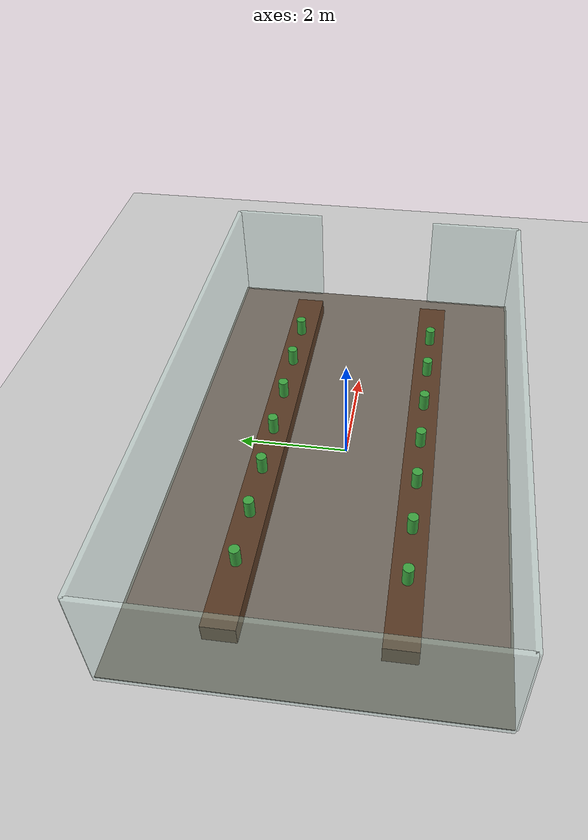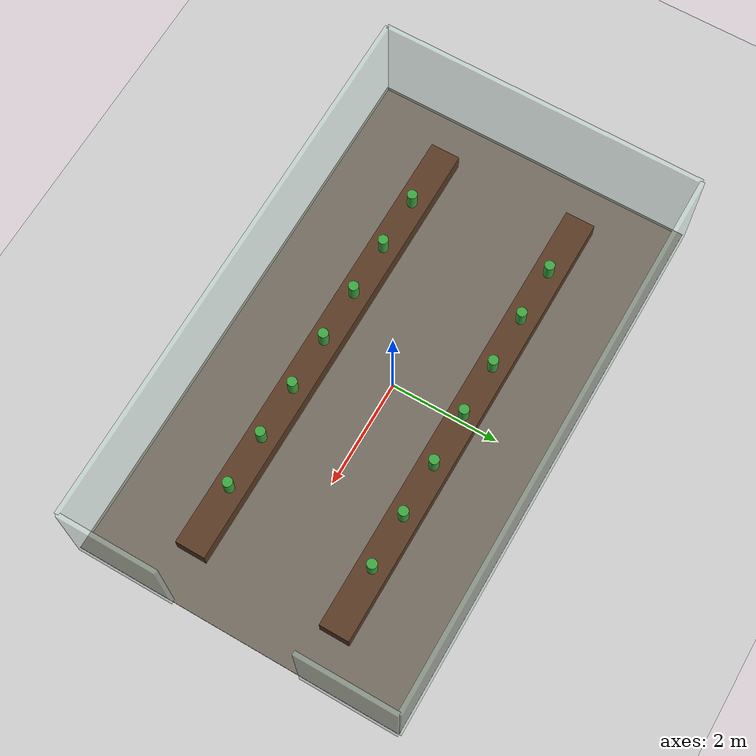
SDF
<sdf version="1.6">
  <world name="greenhouse_world">
    <scene>
      <ambient>0.45 0.45 0.45 1</ambient>
      <background>0.80 0.87 0.92 1</background>
      <shadows>true</shadows>
    </scene>

    <include>
      <uri>model://sun</uri>
    </include>

    <include>
      <uri>model://ground_plane</uri>
    </include>

    <physics type="ode">
      <real_time_update_rate>1000.0</real_time_update_rate>
      <max_step_size>0.001</max_step_size>
      <real_time_factor>1.0</real_time_factor>
    </physics>

    <!-- Greenhouse floor -->
    <model name="greenhouse_floor">
      <static>true</static>
      <link name="floor_link">
        <pose>0 0 0.01 0 0 0</pose>
        <collision name="floor_collision">
          <geometry>
            <box>
              <size>10 6 0.02</size>
            </box>
          </geometry>
        </collision>
        <visual name="floor_visual">
          <geometry>
            <box>
              <size>10 6 0.02</size>
            </box>
          </geometry>
          <material>
            <ambient>0.35 0.33 0.30 1</ambient>
            <diffuse>0.45 0.42 0.38 1</diffuse>
          </material>
        </visual>
      </link>
    </model>

    <!-- Greenhouse left wall -->
    <model name="greenhouse_wall_left">
      <static>true</static>
      <link name="wall_left_link">
        <pose>0 3.0 1.0 0 0 0</pose>
        <collision name="wall_left_collision">
          <geometry>
            <box>
              <size>10 0.08 2.0</size>
            </box>
          </geometry>
        </collision>
        <visual name="wall_left_visual">
          <geometry>
            <box>
              <size>10 0.08 2.0</size>
            </box>
          </geometry>
          <material>
            <ambient>0.75 0.90 0.85 0.35</ambient>
            <diffuse>0.75 0.90 0.85 0.35</diffuse>
          </material>
          <transparency>0.55</transparency>
        </visual>
      </link>
    </model>

    <!-- Greenhouse right wall -->
    <model name="greenhouse_wall_right">
      <static>true</static>
      <link name="wall_right_link">
        <pose>0 -3.0 1.0 0 0 0</pose>
        <collision name="wall_right_collision">
          <geometry>
            <box>
              <size>10 0.08 2.0</size>
            </box>
          </geometry>
        </collision>
        <visual name="wall_right_visual">
          <geometry>
            <box>
              <size>10 0.08 2.0</size>
            </box>
          </geometry>
          <material>
            <ambient>0.75 0.90 0.85 0.35</ambient>
            <diffuse>0.75 0.90 0.85 0.35</diffuse>
          </material>
          <transparency>0.55</transparency>
        </visual>
      </link>
    </model>

    <!-- Greenhouse back wall -->
    <model name="greenhouse_wall_back">
      <static>true</static>
      <link name="wall_back_link">
        <pose>-5.0 0 1.0 0 0 0</pose>
        <collision name="wall_back_collision">
          <geometry>
            <box>
              <size>0.08 6 2.0</size>
            </box>
          </geometry>
        </collision>
        <visual name="wall_back_visual">
          <geometry>
            <box>
              <size>0.08 6 2.0</size>
            </box>
          </geometry>
          <material>
            <ambient>0.75 0.90 0.85 0.35</ambient>
            <diffuse>0.75 0.90 0.85 0.35</diffuse>
          </material>
          <transparency>0.55</transparency>
        </visual>
      </link>
    </model>

    <!-- Greenhouse front wall split into two pieces for a center entrance -->
    <model name="greenhouse_wall_front_left">
      <static>true</static>
      <link name="wall_front_left_link">
        <pose>5.0 2.1 1.0 0 0 0</pose>
        <collision name="wall_front_left_collision">
          <geometry>
            <box>
              <size>0.08 1.8 2.0</size>
            </box>
          </geometry>
        </collision>
        <visual name="wall_front_left_visual">
          <geometry>
            <box>
              <size>0.08 1.8 2.0</size>
            </box>
          </geometry>
          <material>
            <ambient>0.75 0.90 0.85 0.35</ambient>
            <diffuse>0.75 0.90 0.85 0.35</diffuse>
          </material>
          <transparency>0.55</transparency>
        </visual>
      </link>
    </model>

    <model name="greenhouse_wall_front_right">
      <static>true</static>
      <link name="wall_front_right_link">
        <pose>5.0 -2.1 1.0 0 0 0</pose>
        <collision name="wall_front_right_collision">
          <geometry>
            <box>
              <size>0.08 1.8 2.0</size>
            </box>
          </geometry>
        </collision>
        <visual name="wall_front_right_visual">
          <geometry>
            <box>
              <size>0.08 1.8 2.0</size>
            </box>
          </geometry>
          <material>
            <ambient>0.75 0.90 0.85 0.35</ambient>
            <diffuse>0.75 0.90 0.85 0.35</diffuse>
          </material>
          <transparency>0.55</transparency>
        </visual>
      </link>
    </model>

    <!-- Left planter row -->
    <model name="planter_row_left">
      <static>true</static>
      <link name="planter_row_left_link">
        <pose>0 1.35 0.18 0 0 0</pose>
        <collision name="planter_row_left_collision">
          <geometry>
            <box>
              <size>8.4 0.55 0.36</size>
            </box>
          </geometry>
        </collision>
        <visual name="planter_row_left_visual">
          <geometry>
            <box>
              <size>8.4 0.55 0.36</size>
            </box>
          </geometry>
          <material>
            <ambient>0.30 0.20 0.12 1</ambient>
            <diffuse>0.35 0.23 0.14 1</diffuse>
          </material>
        </visual>
      </link>
    </model>

    <!-- Right planter row -->
    <model name="planter_row_right">
      <static>true</static>
      <link name="planter_row_right_link">
        <pose>0 -1.35 0.18 0 0 0</pose>
        <collision name="planter_row_right_collision">
          <geometry>
            <box>
              <size>8.4 0.55 0.36</size>
            </box>
          </geometry>
        </collision>
        <visual name="planter_row_right_visual">
          <geometry>
            <box>
              <size>8.4 0.55 0.36</size>
            </box>
          </geometry>
          <material>
            <ambient>0.30 0.20 0.12 1</ambient>
            <diffuse>0.35 0.23 0.14 1</diffuse>
          </material>
        </visual>
      </link>
    </model>

    <!-- Left row plants -->
    <model name="plant_l1">
      <static>true</static>
      <link name="plant_l1_link">
        <pose>-3.0 1.35 0.45 0 0 0</pose>
        <collision name="plant_l1_collision">
          <geometry>
            <cylinder>
              <radius>0.09</radius>
              <length>0.50</length>
            </cylinder>
          </geometry>
        </collision>
        <visual name="plant_l1_visual">
          <geometry>
            <cylinder>
              <radius>0.09</radius>
              <length>0.50</length>
            </cylinder>
          </geometry>
          <material>
            <ambient>0.20 0.55 0.22 1</ambient>
            <diffuse>0.24 0.65 0.25 1</diffuse>
          </material>
        </visual>
      </link>
    </model>

    <model name="plant_l2">
      <static>true</static>
      <link name="plant_l2_link">
        <pose>-2.0 1.35 0.45 0 0 0</pose>
        <collision name="plant_l2_collision">
          <geometry>
            <cylinder>
              <radius>0.09</radius>
              <length>0.50</length>
            </cylinder>
          </geometry>
        </collision>
        <visual name="plant_l2_visual">
          <geometry>
            <cylinder>
              <radius>0.09</radius>
              <length>0.50</length>
            </cylinder>
          </geometry>
          <material>
            <ambient>0.20 0.55 0.22 1</ambient>
            <diffuse>0.24 0.65 0.25 1</diffuse>
          </material>
        </visual>
      </link>
    </model>

    <model name="plant_l3">
      <static>true</static>
      <link name="plant_l3_link">
        <pose>-1.0 1.35 0.45 0 0 0</pose>
        <collision name="plant_l3_collision">
          <geometry>
            <cylinder>
              <radius>0.09</radius>
              <length>0.50</length>
            </cylinder>
          </geometry>
        </collision>
        <visual name="plant_l3_visual">
          <geometry>
            <cylinder>
              <radius>0.09</radius>
              <length>0.50</length>
            </cylinder>
          </geometry>
          <material>
            <ambient>0.20 0.55 0.22 1</ambient>
            <diffuse>0.24 0.65 0.25 1</diffuse>
          </material>
        </visual>
      </link>
    </model>

    <model name="plant_l4">
      <static>true</static>
      <link name="plant_l4_link">
        <pose>0.0 1.35 0.45 0 0 0</pose>
        <collision name="plant_l4_collision">
          <geometry>
            <cylinder>
              <radius>0.09</radius>
              <length>0.50</length>
            </cylinder>
          </geometry>
        </collision>
        <visual name="plant_l4_visual">
          <geometry>
            <cylinder>
              <radius>0.09</radius>
              <length>0.50</length>
            </cylinder>
          </geometry>
          <material>
            <ambient>0.20 0.55 0.22 1</ambient>
            <diffuse>0.24 0.65 0.25 1</diffuse>
          </material>
        </visual>
      </link>
    </model>

    <model name="plant_l5">
      <static>true</static>
      <link name="plant_l5_link">
        <pose>1.0 1.35 0.45 0 0 0</pose>
        <collision name="plant_l5_collision">
          <geometry>
            <cylinder>
              <radius>0.09</radius>
              <length>0.50</length>
            </cylinder>
          </geometry>
        </collision>
        <visual name="plant_l5_visual">
          <geometry>
            <cylinder>
              <radius>0.09</radius>
              <length>0.50</length>
            </cylinder>
          </geometry>
          <material>
            <ambient>0.20 0.55 0.22 1</ambient>
            <diffuse>0.24 0.65 0.25 1</diffuse>
          </material>
        </visual>
      </link>
    </model>

    <model name="plant_l6">
      <static>true</static>
      <link name="plant_l6_link">
        <pose>2.0 1.35 0.45 0 0 0</pose>
        <collision name="plant_l6_collision">
          <geometry>
            <cylinder>
              <radius>0.09</radius>
              <length>0.50</length>
            </cylinder>
          </geometry>
        </collision>
        <visual name="plant_l6_visual">
          <geometry>
            <cylinder>
              <radius>0.09</radius>
              <length>0.50</length>
            </cylinder>
          </geometry>
          <material>
            <ambient>0.20 0.55 0.22 1</ambient>
            <diffuse>0.24 0.65 0.25 1</diffuse>
          </material>
        </visual>
      </link>
    </model>

    <model name="plant_l7">
      <static>true</static>
      <link name="plant_l7_link">
        <pose>3.0 1.35 0.45 0 0 0</pose>
        <collision name="plant_l7_collision">
          <geometry>
            <cylinder>
              <radius>0.09</radius>
              <length>0.50</length>
            </cylinder>
          </geometry>
        </collision>
        <visual name="plant_l7_visual">
          <geometry>
            <cylinder>
              <radius>0.09</radius>
              <length>0.50</length>
            </cylinder>
          </geometry>
          <material>
            <ambient>0.20 0.55 0.22 1</ambient>
            <diffuse>0.24 0.65 0.25 1</diffuse>
          </material>
        </visual>
      </link>
    </model>

    <!-- Right row plants -->
    <model name="plant_r1">
      <static>true</static>
      <link name="plant_r1_link">
        <pose>-3.0 -1.35 0.45 0 0 0</pose>
        <collision name="plant_r1_collision">
          <geometry>
            <cylinder>
              <radius>0.09</radius>
              <length>0.50</length>
            </cylinder>
          </geometry>
        </collision>
        <visual name="plant_r1_visual">
          <geometry>
            <cylinder>
              <radius>0.09</radius>
              <length>0.50</length>
            </cylinder>
          </geometry>
          <material>
            <ambient>0.20 0.55 0.22 1</ambient>
            <diffuse>0.24 0.65 0.25 1</diffuse>
          </material>
        </visual>
      </link>
    </model>

    <model name="plant_r2">
      <static>true</static>
      <link name="plant_r2_link">
        <pose>-2.0 -1.35 0.45 0 0 0</pose>
        <collision name="plant_r2_collision">
          <geometry>
            <cylinder>
              <radius>0.09</radius>
              <length>0.50</length>
            </cylinder>
          </geometry>
        </collision>
        <visual name="plant_r2_visual">
          <geometry>
            <cylinder>
              <radius>0.09</radius>
              <length>0.50</length>
            </cylinder>
          </geometry>
          <material>
            <ambient>0.20 0.55 0.22 1</ambient>
            <diffuse>0.24 0.65 0.25 1</diffuse>
          </material>
        </visual>
      </link>
    </model>

    <model name="plant_r3">
      <static>true</static>
      <link name="plant_r3_link">
        <pose>-1.0 -1.35 0.45 0 0 0</pose>
        <collision name="plant_r3_collision">
          <geometry>
            <cylinder>
              <radius>0.09</radius>
              <length>0.50</length>
            </cylinder>
          </geometry>
        </collision>
        <visual name="plant_r3_visual">
          <geometry>
            <cylinder>
              <radius>0.09</radius>
              <length>0.50</length>
            </cylinder>
          </geometry>
          <material>
            <ambient>0.20 0.55 0.22 1</ambient>
            <diffuse>0.24 0.65 0.25 1</diffuse>
          </material>
        </visual>
      </link>
    </model>

    <model name="plant_r4">
      <static>true</static>
      <link name="plant_r4_link">
        <pose>0.0 -1.35 0.45 0 0 0</pose>
        <collision name="plant_r4_collision">
          <geometry>
            <cylinder>
              <radius>0.09</radius>
              <length>0.50</length>
            </cylinder>
          </geometry>
        </collision>
        <visual name="plant_r4_visual">
          <geometry>
            <cylinder>
              <radius>0.09</radius>
              <length>0.50</length>
            </cylinder>
          </geometry>
          <material>
            <ambient>0.20 0.55 0.22 1</ambient>
            <diffuse>0.24 0.65 0.25 1</diffuse>
          </material>
        </visual>
      </link>
    </model>

    <model name="plant_r5">
      <static>true</static>
      <link name="plant_r5_link">
        <pose>1.0 -1.35 0.45 0 0 0</pose>
        <collision name="plant_r5_collision">
          <geometry>
            <cylinder>
              <radius>0.09</radius>
              <length>0.50</length>
            </cylinder>
          </geometry>
        </collision>
        <visual name="plant_r5_visual">
          <geometry>
            <cylinder>
              <radius>0.09</radius>
              <length>0.50</length>
            </cylinder>
          </geometry>
          <material>
            <ambient>0.20 0.55 0.22 1</ambient>
            <diffuse>0.24 0.65 0.25 1</diffuse>
          </material>
        </visual>
      </link>
    </model>

    <model name="plant_r6">
      <static>true</static>
      <link name="plant_r6_link">
        <pose>2.0 -1.35 0.45 0 0 0</pose>
        <collision name="plant_r6_collision">
          <geometry>
            <cylinder>
              <radius>0.09</radius>
              <length>0.50</length>
            </cylinder>
          </geometry>
        </collision>
        <visual name="plant_r6_visual">
          <geometry>
            <cylinder>
              <radius>0.09</radius>
              <length>0.50</length>
            </cylinder>
          </geometry>
          <material>
            <ambient>0.20 0.55 0.22 1</ambient>
            <diffuse>0.24 0.65 0.25 1</diffuse>
          </material>
        </visual>
      </link>
    </model>

    <model name="plant_r7">
      <static>true</static>
      <link name="plant_r7_link">
        <pose>3.0 -1.35 0.45 0 0 0</pose>
        <collision name="plant_r7_collision">
          <geometry>
            <cylinder>
              <radius>0.09</radius>
              <length>0.50</length>
            </cylinder>
          </geometry>
        </collision>
        <visual name="plant_r7_visual">
          <geometry>
            <cylinder>
              <radius>0.09</radius>
              <length>0.50</length>
            </cylinder>
          </geometry>
          <material>
            <ambient>0.20 0.55 0.22 1</ambient>
            <diffuse>0.24 0.65 0.25 1</diffuse>
          </material>
        </visual>
      </link>
    </model>
  </world>
</sdf>
